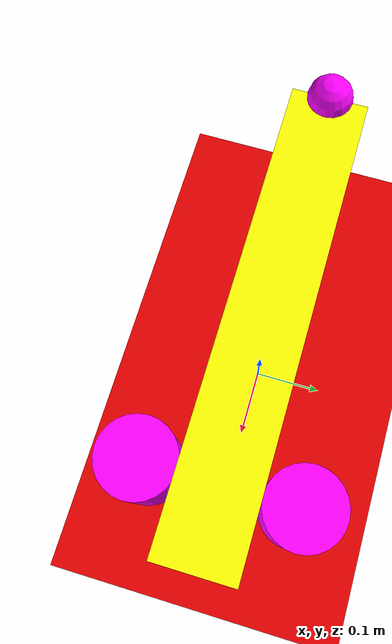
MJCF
<mujoco>
	<worldbody>
        <light diffuse=".5 .5 .5" pos="0 0 3" dir="0 0 -1"/>
		<geom type="plane" size="10 10 0.1" rgba=".9 0 0 1"/>

		<body name="rotate" pos="0 0 .3">
			<joint type="free"/>
			<geom type="box" size="0.3 0.05 0.05" rgba="1 1 0 1"/>

			<body pos="0.2 0.1 -0.05">
				<joint name="arm1" type="hinge" axis="0 1 0"/>
				<geom type="cylinder" size="0.05 0.07" rgba="1 0 1 1"/>
			</body>
			<body pos="0.2 -0.1 -0.05">
				<joint name="arm2" type="hinge" axis="0 1 0"/>
				<geom type="cylinder" size="0.05 0.07" rgba="1 0 1 1"/>
			</body>
			<body pos="-0.3 0 0">
				<joint name="leg" type="hinge" axis="0 1 0"/>
				<geom type="capsule" size="0.03 0.05" rgba="1 0 1 1"/>
			</body>
		</body>
	</worldbody>

	<actuator>
		<motor joint="arm1" name="arm1"/>
		<motor joint="arm2" name="arm2"/>
		<motor joint="leg" name="leg"/>
	</actuator>
</mujoco>
